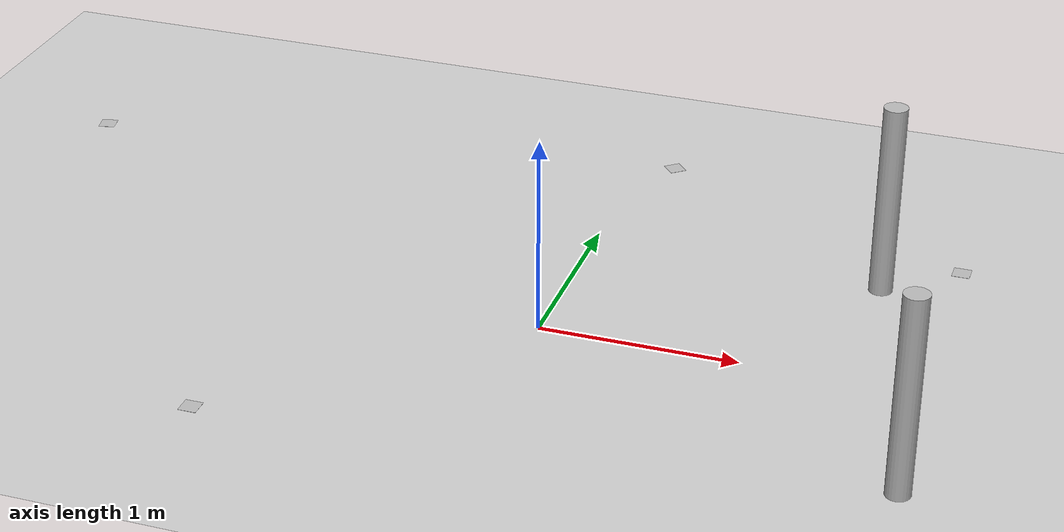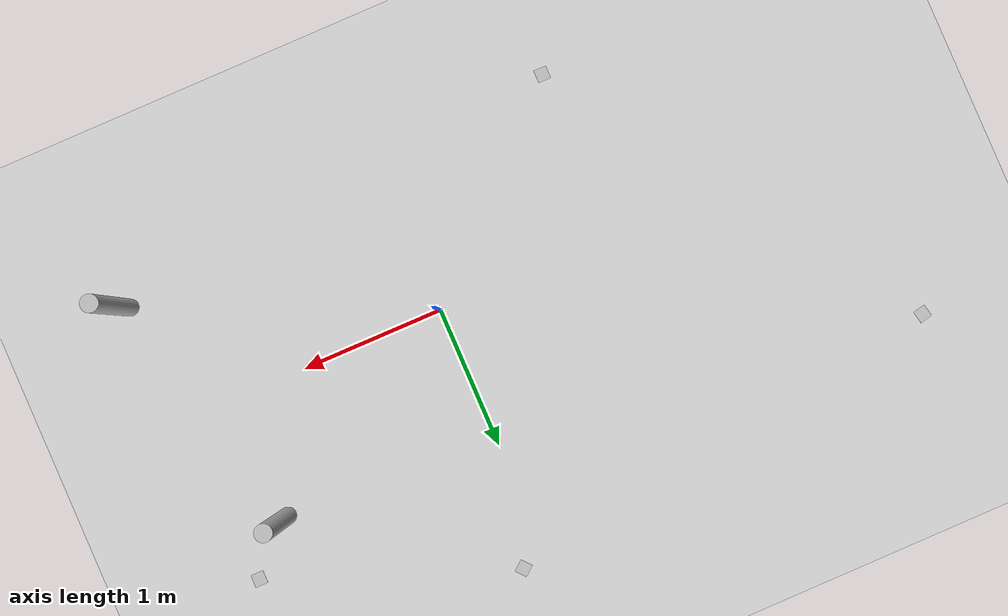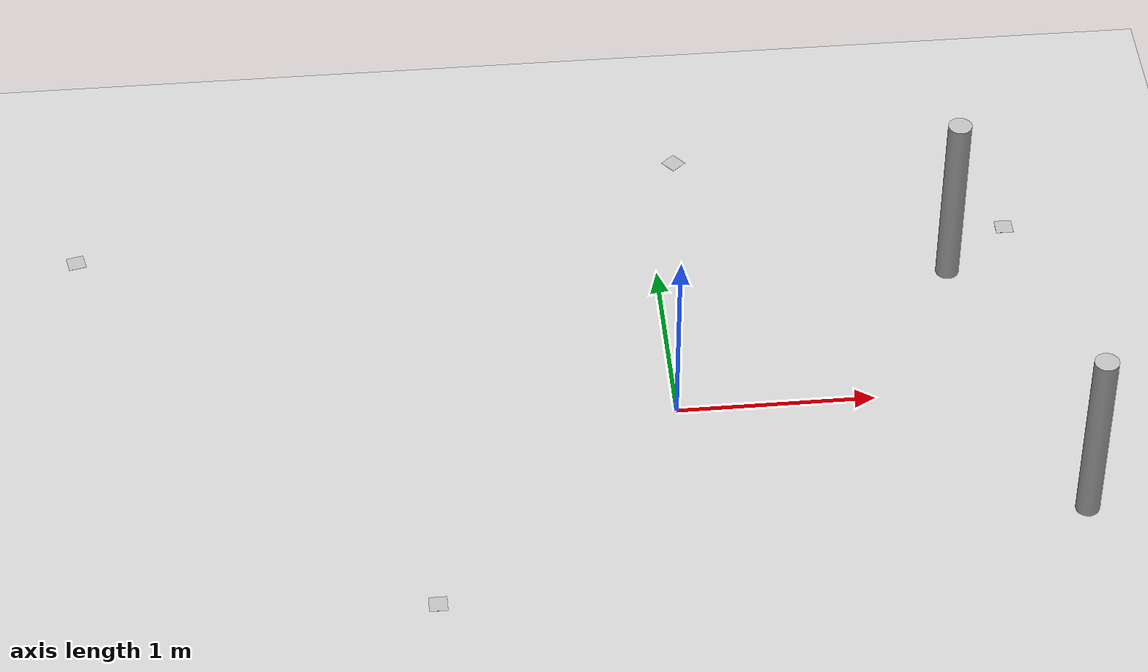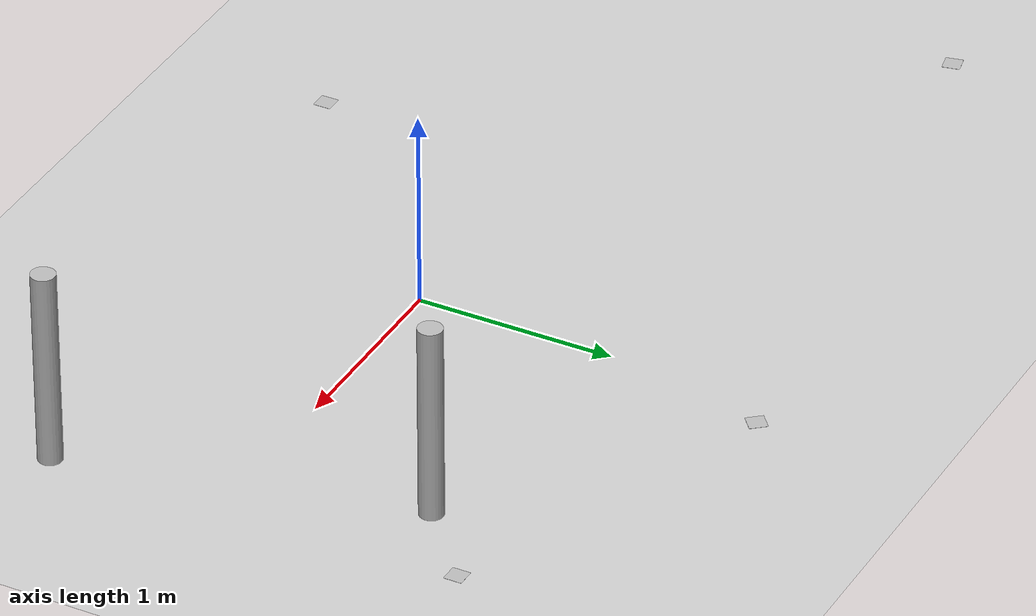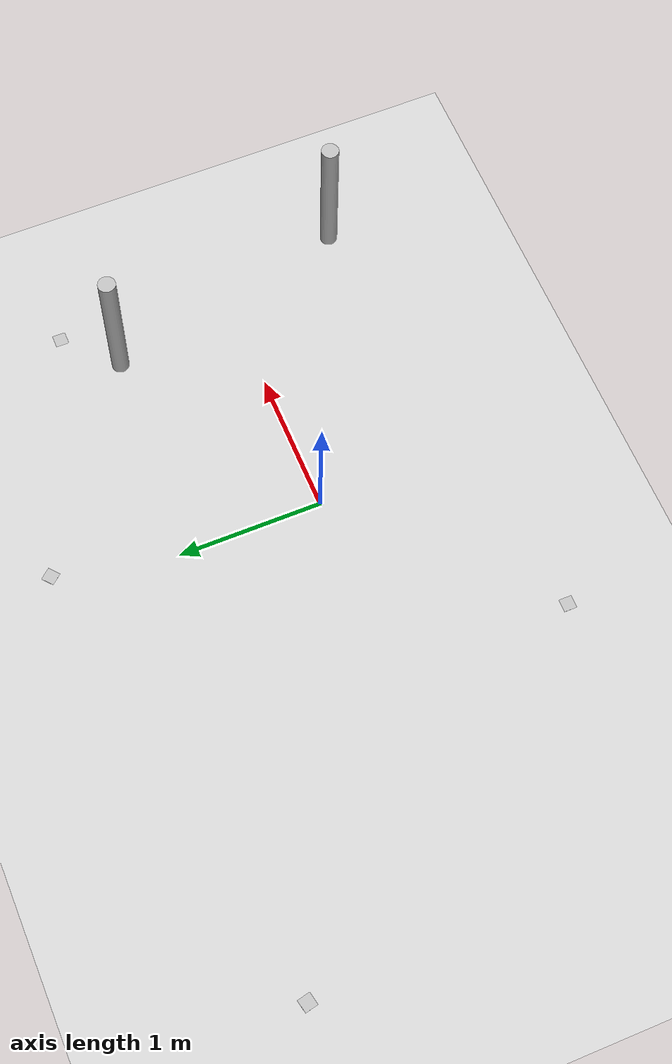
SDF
<sdf version="1.4">
 <world name="default">
  <scene><shadows>0</shadows></scene>
  <include><uri>model://ground_plane</uri></include>
  <include><uri>model://sun</uri></include>
  <model name="cylinder0">
   <static>1</static>
   <link name="cylinder_link">
    <collision name="cylinder_collision">
     <geometry><cylinder><radius>0.06</radius><length>1.0</length></cylinder></geometry>
    </collision>
    <visual name="cylinder_visual">
     <geometry><cylinder><radius>0.06</radius><length>1.0</length></cylinder></geometry>
    </visual>
   </link>
   <pose>1.499 0.867 0.52 0 0 0</pose>
  </model>
  <model name="cylinder1">
   <static>1</static>
   <link name="cylinder_link">
    <collision name="cylinder_collision">
     <geometry><cylinder><radius>0.06</radius><length>1.0</length></cylinder></geometry>
    </collision>
    <visual name="cylinder_visual">
     <geometry><cylinder><radius>0.06</radius><length>1.0</length></cylinder></geometry>
    </visual>
   </link>
   <pose>1.922 -0.856 0.52 0 0 0</pose>
  </model>
  <model name="tagcode1">
   <static>1</static>
   <link name="link">
    <visual name="visual">
     <geometry><box><size>0.09 0.09 0.001</size></box></geometry>
     <material>
      <script>
       <uri>model://tagcode/materials/scripts</uri>
       <uri>model://tagcode/materials/textures</uri>
       <name>tagcode1</name>
      </script>
     </material>
    </visual>
   </link>
   <pose>1.849850 1.183890 0.011 0 0 0</pose>
  </model>
  <model name="tagcode2">
   <static>1</static>
   <link name="link">
    <visual name="visual">
     <geometry><box><size>0.09 0.09 0.001</size></box></geometry>
     <material>
      <script>
       <uri>model://tagcode/materials/scripts</uri>
       <uri>model://tagcode/materials/textures</uri>
       <name>tagcode2</name>
      </script>
     </material>
    </visual>
   </link>
   <pose>0.175663 1.831060 0.011 0 0 0.7</pose>
  </model>
  <model name="tagcode3">
   <static>1</static>
   <link name="link">
    <visual name="visual">
     <geometry><box><size>0.09 0.09 0.001</size></box></geometry>
     <material>
      <script>
       <uri>model://tagcode/materials/scripts</uri>
       <uri>model://tagcode/materials/textures</uri>
       <name>tagcode3</name>
      </script>
     </material>
    </visual>
   </link>
   <pose>-3.001410 1.328020 0.011 0 0 0.21</pose>
  </model>
  <model name="tagcode4">
   <static>1</static>
   <link name="link">
    <visual name="visual">
     <geometry><box><size>0.09 0.09 0.001</size></box></geometry>
     <material>
      <script>
       <uri>model://tagcode/materials/scripts</uri>
       <uri>model://tagcode/materials/textures</uri>
       <name>tagcode4</name>
      </script>
     </material>
    </visual>
   </link>
   <pose>-1.27786 -1.201190 0.011 0 0 0</pose>
  </model>
 </world>
</sdf>
